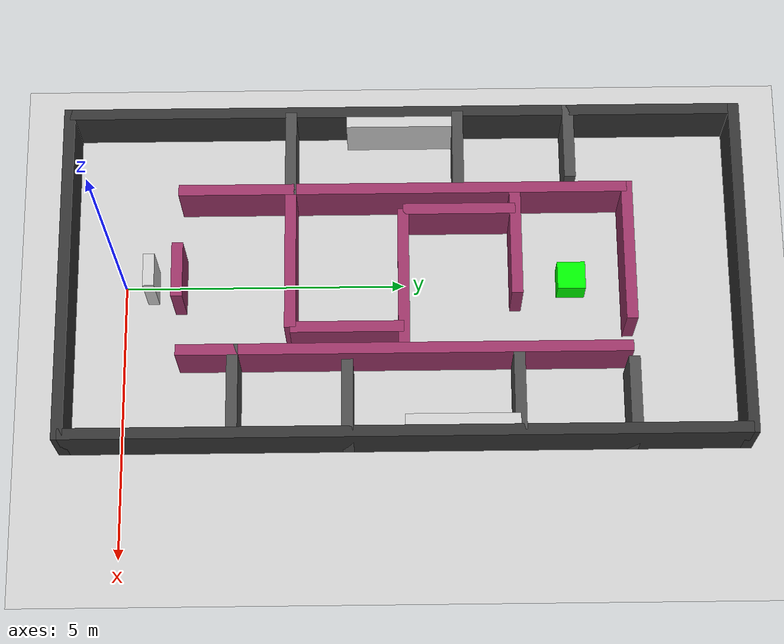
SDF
<?xml version="1.0" ?>
<sdf version="1.6">
    <world name="maze_complex">
    <light type="directional" name="sun">
      <cast_shadows>true</cast_shadows>
      <pose>0 0 10 0 0 0</pose>
      <diffuse>0.8 0.8 0.8 1</diffuse>
      <specular>0.2 0.2 0.2 1</specular>
      <attenuation><range>1000</range><constant>0.9</constant><linear>0.01</linear><quadratic>0.001</quadratic></attenuation>
      <direction>-0.5 0.1 -0.9</direction>
    </light>
    <model name="ground_plane">
      <static>true</static>
      <link name="link">
        <collision name="collision"><geometry><plane><normal>0 0 1</normal><size>100 100</size></plane></geometry></collision>
        <visual name="visual"><geometry><plane><normal>0 0 1</normal><size>100 100</size></plane></geometry>
          <material><ambient>0.8 0.8 0.8 1</ambient><diffuse>0.8 0.8 0.8 1</diffuse><specular>0.8 0.8 0.8 1</specular></material>
        </visual>
      </link>
    </model>
    <plugin filename="gz-sim-physics-system" name="gz::sim::systems::Physics"></plugin>
    <plugin filename="gz-sim-user-commands-system" name="gz::sim::systems::UserCommands"></plugin>
    <plugin filename="gz-sim-scene-broadcaster-system" name="gz::sim::systems::SceneBroadcaster"></plugin>
    <plugin filename="gz-sim-sensors-system" name="gz::sim::systems::Sensors"><render_engine>ogre2</render_engine></plugin>
    <!-- Outer Boundaries -->
    <model name="wall_outer_left"><pose>-3.0 5.0 0.5 0 0 0</pose><static>true</static><link name="link"><collision name="collision"><geometry><box><size>0.2 12.0 1.0</size></box></geometry></collision><visual name="visual"><geometry><box><size>0.2 12.0 1.0</size></box></geometry><material><ambient>0.2 0.2 0.2 1</ambient></material></visual></link></model>
    <model name="wall_outer_right"><pose>3.0 5.0 0.5 0 0 0</pose><static>true</static><link name="link"><collision name="collision"><geometry><box><size>0.2 12.0 1.0</size></box></geometry></collision><visual name="visual"><geometry><box><size>0.2 12.0 1.0</size></box></geometry><material><ambient>0.2 0.2 0.2 1</ambient></material></visual></link></model>
    <model name="wall_outer_bottom"><pose>0 -1.0 0.5 0 0 0</pose><static>true</static><link name="link"><collision name="collision"><geometry><box><size>6.2 0.2 1.0</size></box></geometry></collision><visual name="visual"><geometry><box><size>6.2 0.2 1.0</size></box></geometry><material><ambient>0.2 0.2 0.2 1</ambient></material></visual></link></model>
    <model name="wall_outer_top"><pose>0 11.0 0.5 0 0 0</pose><static>true</static><link name="link"><collision name="collision"><geometry><box><size>6.2 0.2 1.0</size></box></geometry></collision><visual name="visual"><geometry><box><size>6.2 0.2 1.0</size></box></geometry><material><ambient>0.2 0.2 0.2 1</ambient></material></visual></link></model>
    <!-- Inner Box Boundaries -->
    <model name="inner_left"><pose>-1.5 5.0 0.5 0 0 0</pose><static>true</static><link name="link"><collision name="collision"><geometry><box><size>0.2 8.0 1.0</size></box></geometry></collision><visual name="visual"><geometry><box><size>0.2 8.0 1.0</size></box></geometry><material><ambient>0.6 0.2 0.4 1</ambient></material></visual></link></model>
    <model name="inner_right"><pose>1.5 5.0 0.5 0 0 0</pose><static>true</static><link name="link"><collision name="collision"><geometry><box><size>0.2 8.0 1.0</size></box></geometry></collision><visual name="visual"><geometry><box><size>0.2 8.0 1.0</size></box></geometry><material><ambient>0.6 0.2 0.4 1</ambient></material></visual></link></model>
    <model name="inner_top"><pose>-0.3 9.0 0.5 0 0 0</pose><static>true</static><link name="link"><collision name="collision"><geometry><box><size>2.6 0.2 1.0</size></box></geometry></collision><visual name="visual"><geometry><box><size>2.6 0.2 1.0</size></box></geometry><material><ambient>0.6 0.2 0.4 1</ambient></material></visual></link></model>
    <model name="inner_bottom"><pose>0 1.0 0.5 0 0 0</pose><static>true</static><link name="link"><collision name="collision"><geometry><box><size>1.0 0.2 1.0</size></box></geometry></collision><visual name="visual"><geometry><box><size>1.0 0.2 1.0</size></box></geometry><material><ambient>0.6 0.2 0.4 1</ambient></material></visual></link></model>
    <!-- Outer Corridor Zig-Zag (Between X: 1.5 to 3.0 and -1.5 to -3.0) -->
    <model name="out_horiz_1"><pose>-2.2 3.0 0.5 0 0 0</pose><static>true</static><link name="link"><collision name="collision"><geometry><box><size>1.6 0.2 1.0</size></box></geometry></collision><visual name="visual"><geometry><box><size>1.6 0.2 1.0</size></box></geometry><material><ambient>0.3 0.3 0.3 1</ambient></material></visual></link></model>
    <model name="out_horiz_2"><pose>-2.2 6.0 0.5 0 0 0</pose><static>true</static><link name="link"><collision name="collision"><geometry><box><size>1.6 0.2 1.0</size></box></geometry></collision><visual name="visual"><geometry><box><size>1.6 0.2 1.0</size></box></geometry><material><ambient>0.3 0.3 0.3 1</ambient></material></visual></link></model>
    <model name="out_horiz_3"><pose>-2.4 8.0 0.5 0 0 0</pose><static>true</static><link name="link"><collision name="collision"><geometry><box><size>1.4 0.2 1.0</size></box></geometry></collision><visual name="visual"><geometry><box><size>1.4 0.2 1.0</size></box></geometry><material><ambient>0.3 0.3 0.3 1</ambient></material></visual></link></model>
    <model name="out_horiz_4"><pose>2.2 2.0 0.5 0 0 0</pose><static>true</static><link name="link"><collision name="collision"><geometry><box><size>1.6 0.2 1.0</size></box></geometry></collision><visual name="visual"><geometry><box><size>1.6 0.2 1.0</size></box></geometry><material><ambient>0.3 0.3 0.3 1</ambient></material></visual></link></model>
    <model name="out_horiz_5"><pose>2.4 4.0 0.5 0 0 0</pose><static>true</static><link name="link"><collision name="collision"><geometry><box><size>1.4 0.2 1.0</size></box></geometry></collision><visual name="visual"><geometry><box><size>1.4 0.2 1.0</size></box></geometry><material><ambient>0.3 0.3 0.3 1</ambient></material></visual></link></model>
    <model name="out_horiz_6"><pose>2.2 7.0 0.5 0 0 0</pose><static>true</static><link name="link"><collision name="collision"><geometry><box><size>1.6 0.2 1.0</size></box></geometry></collision><visual name="visual"><geometry><box><size>1.6 0.2 1.0</size></box></geometry><material><ambient>0.3 0.3 0.3 1</ambient></material></visual></link></model>
    <model name="out_horiz_7"><pose>2.4 9.0 0.5 0 0 0</pose><static>true</static><link name="link"><collision name="collision"><geometry><box><size>1.4 0.2 1.0</size></box></geometry></collision><visual name="visual"><geometry><box><size>1.4 0.2 1.0</size></box></geometry><material><ambient>0.3 0.3 0.3 1</ambient></material></visual></link></model>
    <!-- Inside the Trap Box -->
    <model name="in_horiz_1"><pose>-0.2 3.0 0.5 0 0 0</pose><static>true</static><link name="link"><collision name="collision"><geometry><box><size>2.6 0.2 1.0</size></box></geometry></collision><visual name="visual"><geometry><box><size>2.6 0.2 1.0</size></box></geometry><material><ambient>0.6 0.2 0.4 1</ambient></material></visual></link></model>
    <model name="in_vert_1"><pose>1.1 4.0 0.5 0 0 0</pose><static>true</static><link name="link"><collision name="collision"><geometry><box><size>0.2 2.0 1.0</size></box></geometry></collision><visual name="visual"><geometry><box><size>0.2 2.0 1.0</size></box></geometry><material><ambient>0.6 0.2 0.4 1</ambient></material></visual></link></model>
    <model name="in_horiz_2"><pose>0.2 5.0 0.5 0 0 0</pose><static>true</static><link name="link"><collision name="collision"><geometry><box><size>2.6 0.2 1.0</size></box></geometry></collision><visual name="visual"><geometry><box><size>2.6 0.2 1.0</size></box></geometry><material><ambient>0.6 0.2 0.4 1</ambient></material></visual></link></model>
    <model name="in_vert_2"><pose>-1.1 6.0 0.5 0 0 0</pose><static>true</static><link name="link"><collision name="collision"><geometry><box><size>0.2 2.0 1.0</size></box></geometry></collision><visual name="visual"><geometry><box><size>0.2 2.0 1.0</size></box></geometry><material><ambient>0.6 0.2 0.4 1</ambient></material></visual></link></model>
    <model name="in_horiz_3"><pose>-0.5 7.0 0.5 0 0 0</pose><static>true</static><link name="link"><collision name="collision"><geometry><box><size>2.0 0.2 1.0</size></box></geometry></collision><visual name="visual"><geometry><box><size>2.0 0.2 1.0</size></box></geometry><material><ambient>0.6 0.2 0.4 1</ambient></material></visual></link></model>
    <!-- Distractors / Extra blocks -->
    <model name="distract_1"><pose>-2.8 5.0 0.5 0 0 0</pose><static>true</static><link name="link"><collision name="collision"><geometry><box><size>0.2 2.0 1.0</size></box></geometry></collision><visual name="visual"><geometry><box><size>0.2 2.0 1.0</size></box></geometry><material><ambient>0.8 0.8 0.8 1</ambient></material></visual></link></model>
    <model name="distract_2"><pose>2.8 6.0 0.5 0 0 0</pose><static>true</static><link name="link"><collision name="collision"><geometry><box><size>0.2 2.0 1.0</size></box></geometry></collision><visual name="visual"><geometry><box><size>0.2 2.0 1.0</size></box></geometry><material><ambient>0.8 0.8 0.8 1</ambient></material></visual></link></model>
    <model name="distract_3"><pose>0 0.5 0.5 0 0 0</pose><static>true</static><link name="link"><collision name="collision"><geometry><box><size>0.6 0.2 1.0</size></box></geometry></collision><visual name="visual"><geometry><box><size>0.6 0.2 1.0</size></box></geometry><material><ambient>0.8 0.8 0.8 1</ambient></material></visual></link></model>
    <!-- Goal Marker (Green Box) -->
    <model name="goal_marker">
      <pose>0.0 8.0 0.25 0 0 0</pose>
      <static>true</static>
      <link name="link">
        <visual name="visual">
          <geometry><box><size>0.5 0.5 0.5</size></box></geometry>
          <material>
            <ambient>0 1 0 1</ambient>
            <diffuse>0 1 0 1</diffuse>
          </material>
        </visual>
      </link>
    </model>
  </world>
</sdf>
